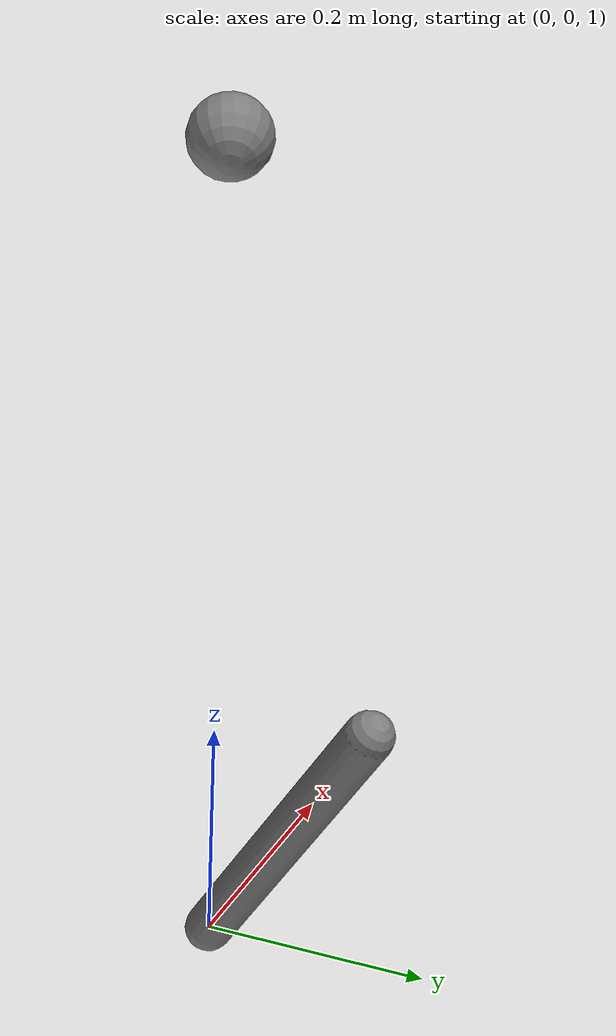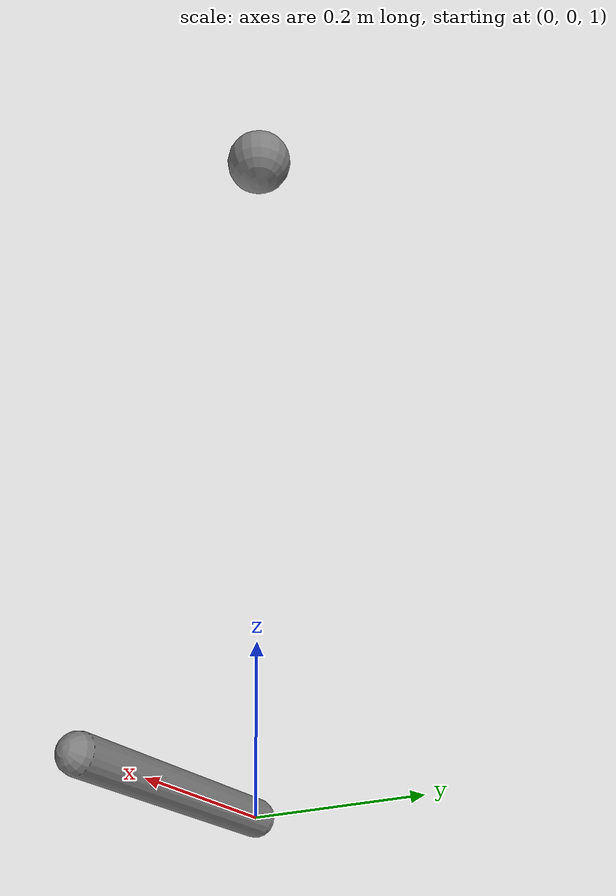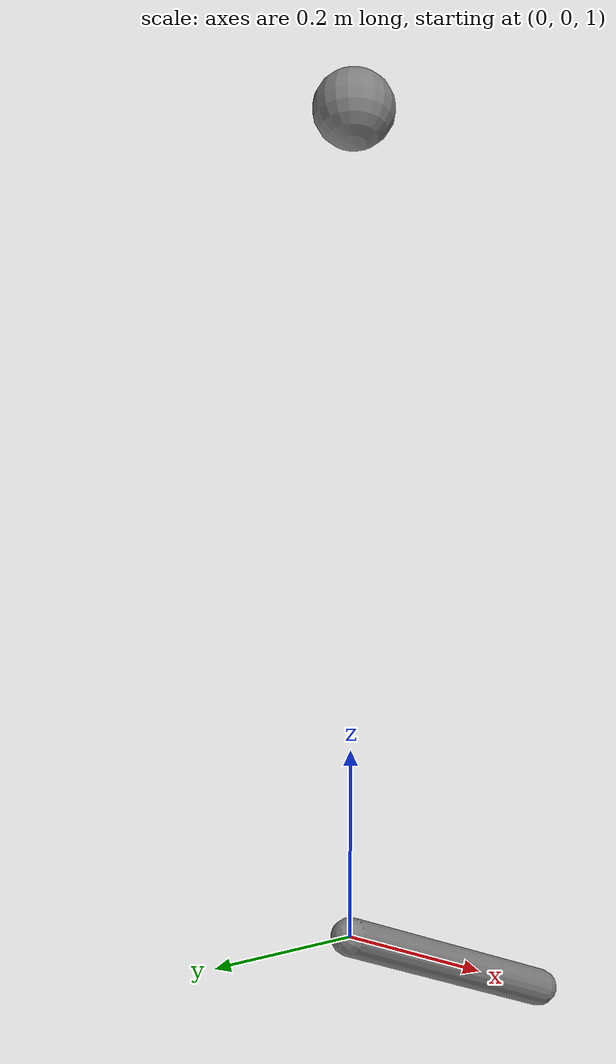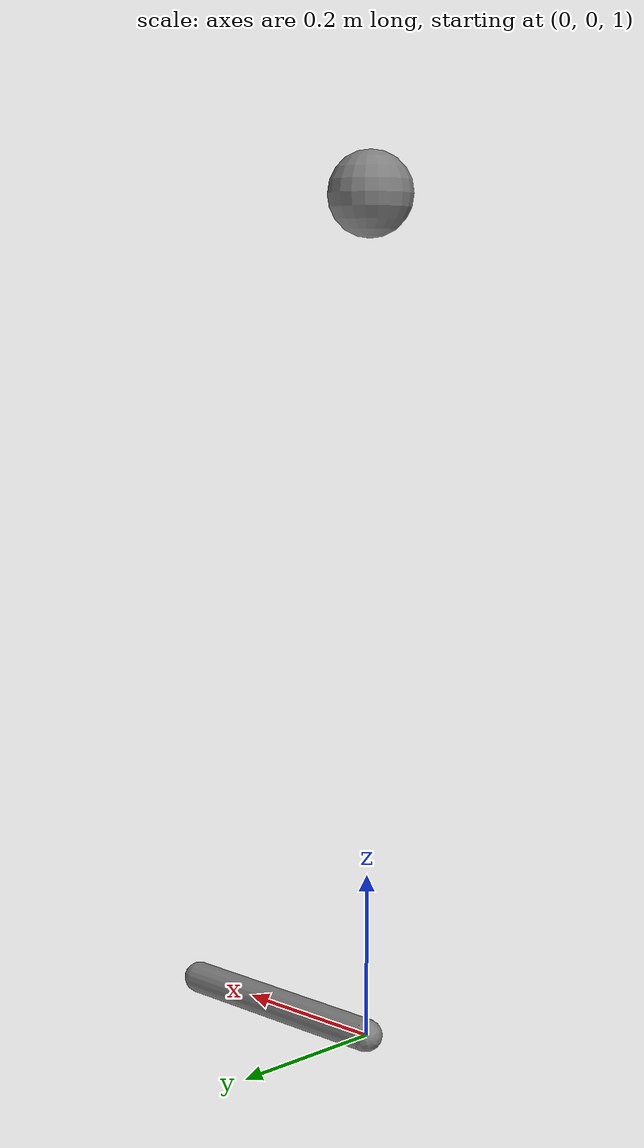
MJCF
<mujoco model="dims">
  <option gravity="0 0 -9.81" timestep="0.001" magnetic="0 0 -0.5"/>
  <compiler angle="radian"/>
  <worldbody>
    <body name="b1" pos="0 0 1">
      <joint name="hinge" type="hinge" axis="0 1 0"/>
      <geom name="g1" type="capsule" size="0.02" fromto="0 0 0 0.3 0 0" mass="0.5"/>
      <site name="s1" pos="0.1 0 0"/>
    </body>
    <body name="b2" pos="0 0 2">
      <joint name="ball" type="ball"/>
      <geom name="g2" type="sphere" size="0.05" mass="0.5"/>
      <site name="s2" pos="0 0 0"/>
    </body>
  </worldbody>
  <actuator>
    <motor name="motor" joint="hinge" gear="1"/>
  </actuator>
  <sensor>
    <touch name="s_touch" site="s1"/>
    <accelerometer name="s_accel" site="s1"/>
    <velocimeter name="s_veloc" site="s1"/>
    <gyro name="s_gyro" site="s1"/>
    <force name="s_force" site="s1"/>
    <torque name="s_torque" site="s1"/>
    <magnetometer name="s_mag" site="s1"/>
    <rangefinder name="s_range" site="s1"/>
    <jointpos name="s_jntpos" joint="hinge"/>
    <jointvel name="s_jntvel" joint="hinge"/>
    <ballquat name="s_bquat" joint="ball"/>
    <ballangvel name="s_bangvel" joint="ball"/>
    <actuatorpos name="s_actpos" actuator="motor"/>
    <actuatorvel name="s_actvel" actuator="motor"/>
    <actuatorfrc name="s_actfrc" actuator="motor"/>
    <framepos name="s_fpos" objtype="site" objname="s1"/>
    <framequat name="s_fquat" objtype="site" objname="s1"/>
    <framexaxis name="s_fxax" objtype="site" objname="s1"/>
    <frameyaxis name="s_fyax" objtype="site" objname="s1"/>
    <framezaxis name="s_fzax" objtype="site" objname="s1"/>
    <framelinvel name="s_flinv" objtype="site" objname="s1"/>
    <frameangvel name="s_fangv" objtype="site" objname="s1"/>
    <framelinacc name="s_flina" objtype="site" objname="s1"/>
    <frameangacc name="s_fanga" objtype="site" objname="s1"/>
    <subtreecom name="s_stcom" body="b1"/>
    <subtreelinvel name="s_stlv" body="b1"/>
    <subtreeangmom name="s_stam" body="b1"/>
    <clock name="s_clock"/>
    <jointactuatorfrc name="s_jaf" joint="hinge"/>
  </sensor>
</mujoco>
